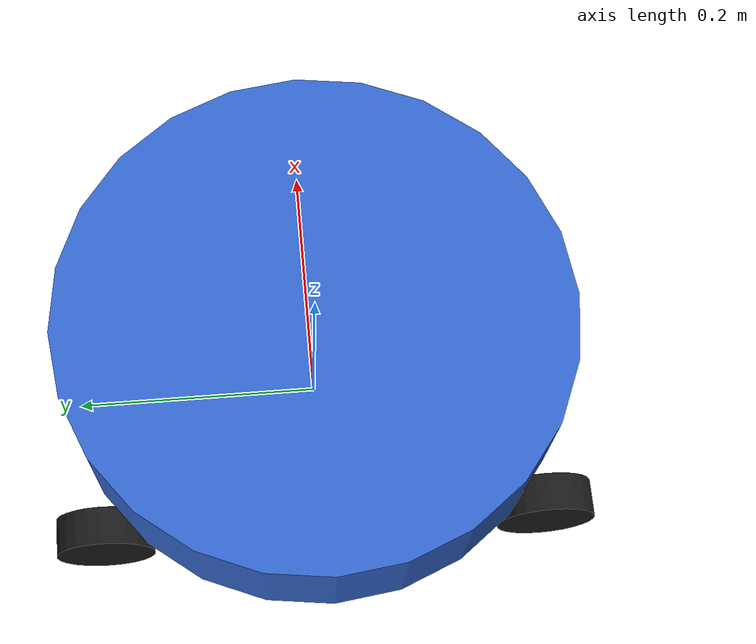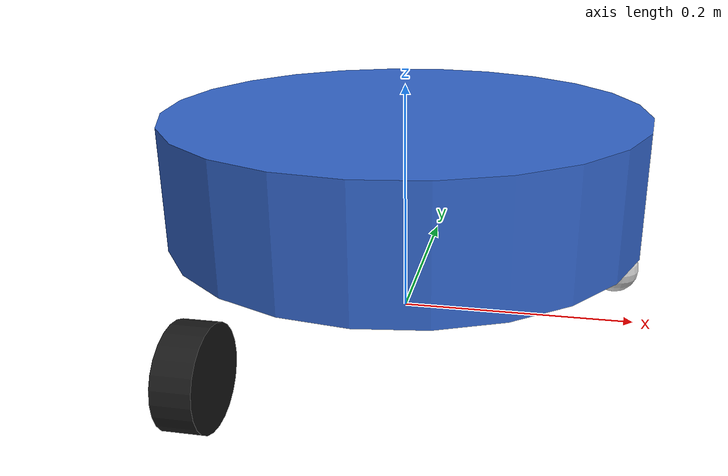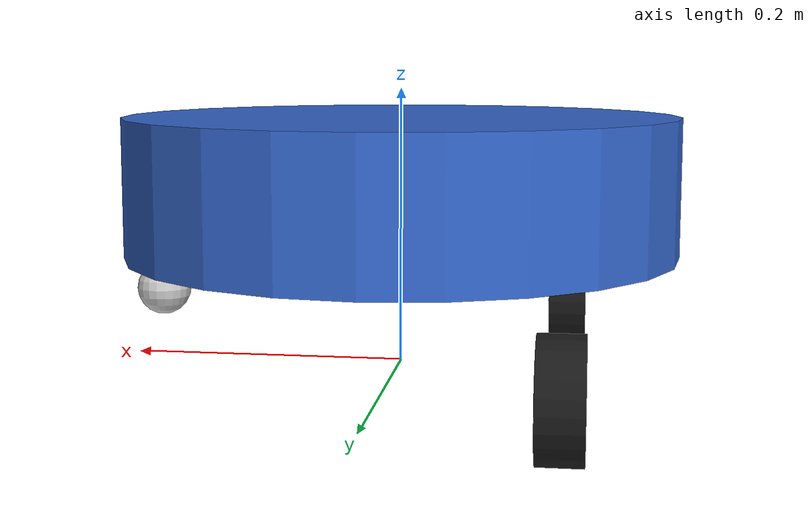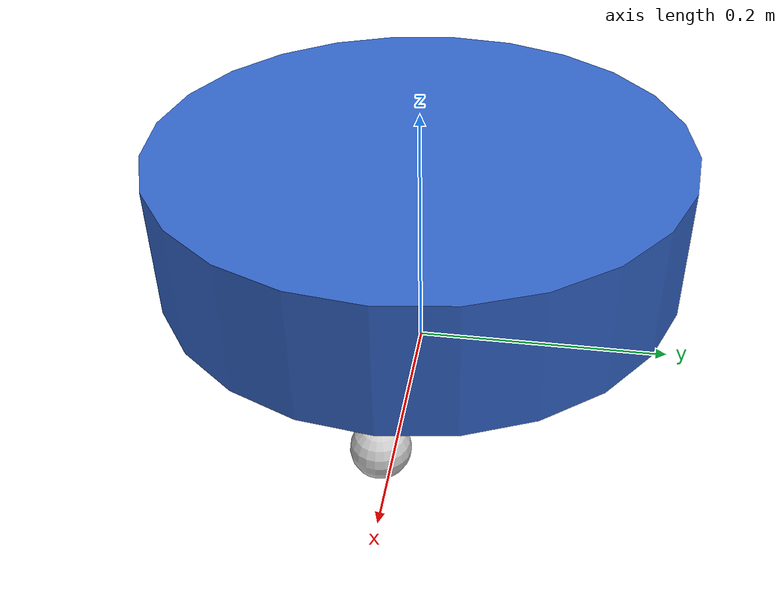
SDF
<?xml version="1.0" ?>
<sdf version="1.9">
  <model name="simple_robot">
    <pose>0 0 0.05 0 0 0</pose>

    <!-- ─── Chassis ────────────────────────────────── -->
    <link name="chassis">
      <pose>0 0 0.08 0 0 0</pose>
      <inertial>
        <mass>2.0</mass>
        <inertia>
          <ixx>0.01</ixx>
          <ixy>0</ixy>
          <ixz>0</ixz>
          <iyy>0.01</iyy>
          <iyz>0</iyz>
          <izz>0.02</izz>
        </inertia>
      </inertial>
      <collision name="collision">
        <geometry>
          <cylinder>
            <radius>0.20</radius>
            <length>0.10</length>
          </cylinder>
        </geometry>
      </collision>
      <visual name="visual">
        <geometry>
          <cylinder>
            <radius>0.20</radius>
            <length>0.10</length>
          </cylinder>
        </geometry>
        <material>
          <ambient>0.2 0.4 0.8 1</ambient>
          <diffuse>0.2 0.4 0.8 1</diffuse>
        </material>
      </visual>
    </link>

    <!-- ─── Left wheel ─────────────────────────────── -->
    <link name="left_wheel">
      <pose>-0.12 0.18 -0.03 0 1.5708 0</pose>
      <inertial>
        <mass>0.2</mass>
        <inertia>
          <ixx>0.0002</ixx>
          <ixy>0</ixy>
          <ixz>0</ixz>
          <iyy>0.0002</iyy>
          <iyz>0</iyz>
          <izz>0.0003</izz>
        </inertia>
      </inertial>
      <collision name="collision">
        <geometry>
          <cylinder>
            <radius>0.04</radius>
            <length>0.03</length>
          </cylinder>
        </geometry>
      </collision>
      <visual name="visual">
        <geometry>
          <cylinder>
            <radius>0.04</radius>
            <length>0.03</length>
          </cylinder>
        </geometry>
        <material>
          <ambient>0.1 0.1 0.1 1</ambient>
          <diffuse>0.1 0.1 0.1 1</diffuse>
        </material>
      </visual>
    </link>

    <!-- ─── Right wheel ────────────────────────────── -->
    <link name="right_wheel">
      <pose>-0.12 -0.18 -0.03 0 1.5708 0</pose>
      <inertial>
        <mass>0.2</mass>
        <inertia>
          <ixx>0.0002</ixx>
          <ixy>0</ixy>
          <ixz>0</ixz>
          <iyy>0.0002</iyy>
          <iyz>0</iyz>
          <izz>0.0003</izz>
        </inertia>
      </inertial>
      <collision name="collision">
        <geometry>
          <cylinder>
            <radius>0.04</radius>
            <length>0.03</length>
          </cylinder>
        </geometry>
      </collision>
      <visual name="visual">
        <geometry>
          <cylinder>
            <radius>0.04</radius>
            <length>0.03</length>
          </cylinder>
        </geometry>
        <material>
          <ambient>0.1 0.1 0.1 1</ambient>
          <diffuse>0.1 0.1 0.1 1</diffuse>
        </material>
      </visual>
    </link>

    <!-- ─── Caster (passive ball) ──────────────────── -->
    <link name="caster">
      <pose>0.18 0 0 0 0 0</pose>
      <inertial>
        <mass>0.05</mass>
        <inertia>
          <ixx>0.0001</ixx>
          <ixy>0</ixy>
          <ixz>0</ixz>
          <iyy>0.0001</iyy>
          <iyz>0</iyz>
          <izz>0.0001</izz>
        </inertia>
      </inertial>
      <collision name="collision">
        <geometry>
          <sphere>
            <radius>0.02</radius>
          </sphere>
        </geometry>
      </collision>
      <visual name="visual">
        <geometry>
          <sphere>
            <radius>0.02</radius>
          </sphere>
        </geometry>
        <material>
          <ambient>0.8 0.8 0.8 1</ambient>
          <diffuse>0.8 0.8 0.8 1</diffuse>
        </material>
      </visual>
    </link>

    <!-- ─── LiDAR frame (fixed at centre top) ──────── -->
    <link name="laser">
      <pose>0 0 0.12 0 0 0</pose>
      <inertial>
        <mass>0.05</mass>
        <inertia>
          <ixx>1e-6</ixx>
          <ixy>0</ixy>
          <ixz>0</ixz>
          <iyy>1e-6</iyy>
          <iyz>0</iyz>
          <izz>1e-6</izz>
        </inertia>
      </inertial>
    </link>

    <!-- ─── Joints ─────────────────────────────────── -->

    <joint name="left_wheel_joint" type="revolute">
      <parent>chassis</parent>
      <child>left_wheel</child>
      <axis>
        <xyz>0 0 1</xyz>    <!-- rotate around Z (flipped cylinder axis) -->
        <limit>
          <lower>-1e16</lower>
          <upper>1e16</upper>
        </limit>
      </axis>
    </joint>

    <joint name="right_wheel_joint" type="revolute">
      <parent>chassis</parent>
      <child>right_wheel</child>
      <axis>
        <xyz>0 0 1</xyz>
        <limit>
          <lower>-1e16</lower>
          <upper>1e16</upper>
        </limit>
      </axis>
    </joint>

    <joint name="caster_joint" type="ball">
      <parent>chassis</parent>
      <child>caster</child>
    </joint>

    <joint name="laser_joint" type="fixed">
      <parent>chassis</parent>
      <child>laser</child>
    </joint>

    <!-- ─── Differential drive plugin ──────────────── -->
    <plugin
      filename="gz-sim-diff-drive-system"
      name="gz::sim::systems::DiffDrive">
      <left_joint>left_wheel_joint</left_joint>
      <right_joint>right_wheel_joint</right_joint>
      <wheel_separation>0.36</wheel_separation>
      <wheel_radius>0.04</wheel_radius>
      <odom_publish_frequency>50</odom_publish_frequency>
      <topic>cmd_vel</topic>
      <odom_topic>odometry</odom_topic>
    </plugin>

    <!-- ─── LiDAR (ray) plugin ──────────────────────── -->
    <plugin
      filename="gz-sim-ray-sensor-system"
      name="gz::sim::systems::RaySensor">
      <sensor name="lidar" type="ray">
        <pose relative_to="laser">0 0 0 0 0 0</pose>
        <always_on>1</always_on>
        <update_rate>10</update_rate>
        <visualize>true</visualize>
        <ray>
          <scan>
            <horizontal>
              <samples>720</samples>
              <resolution>1</resolution>
              <min_angle>-3.14159</min_angle>
              <max_angle>3.14159</max_angle>
            </horizontal>
          </scan>
          <range>
            <min>0.1</min>
            <max>30.0</max>
            <resolution>0.01</resolution>
          </range>
          <noise>
            <type>none</type>
          </noise>
        </ray>
      </sensor>
    </plugin>

  </model>
</sdf>
